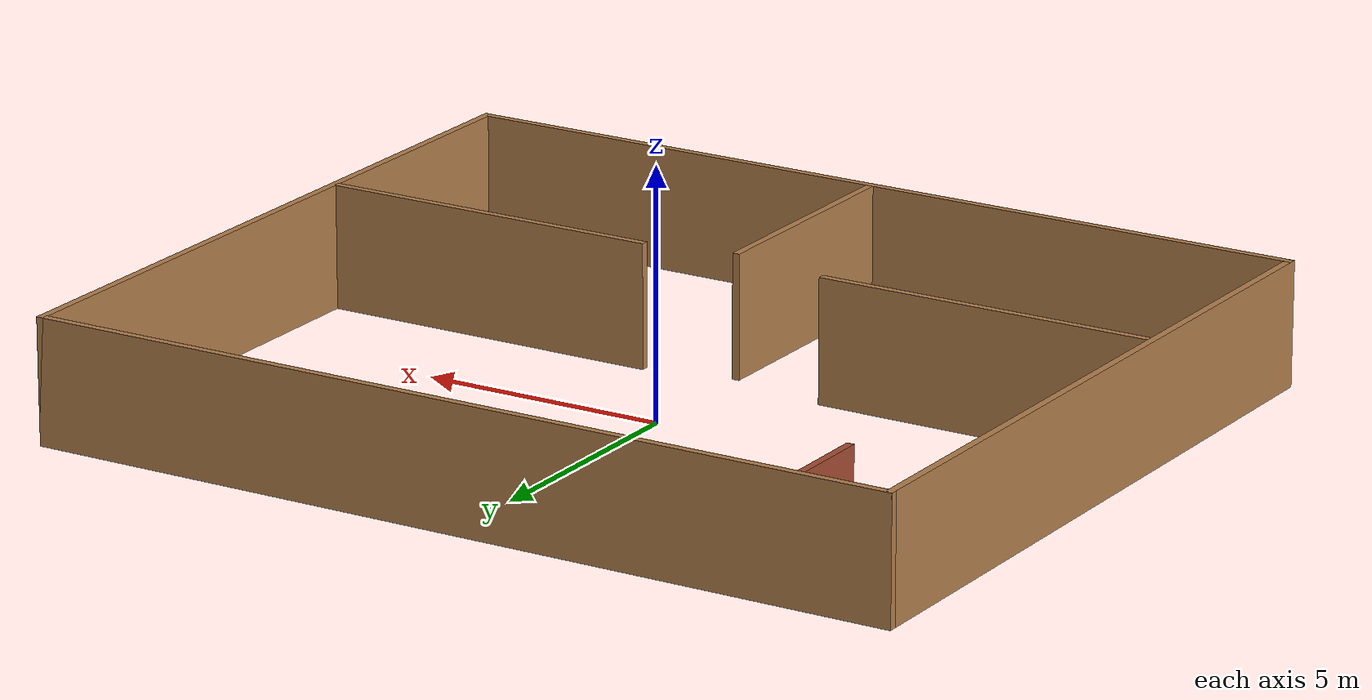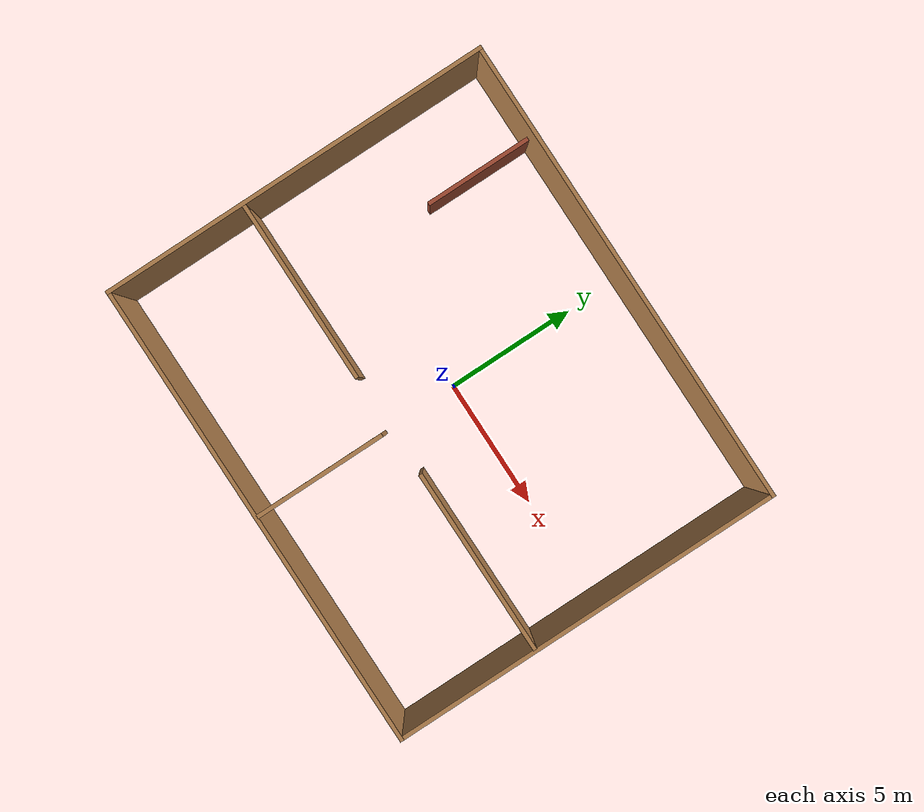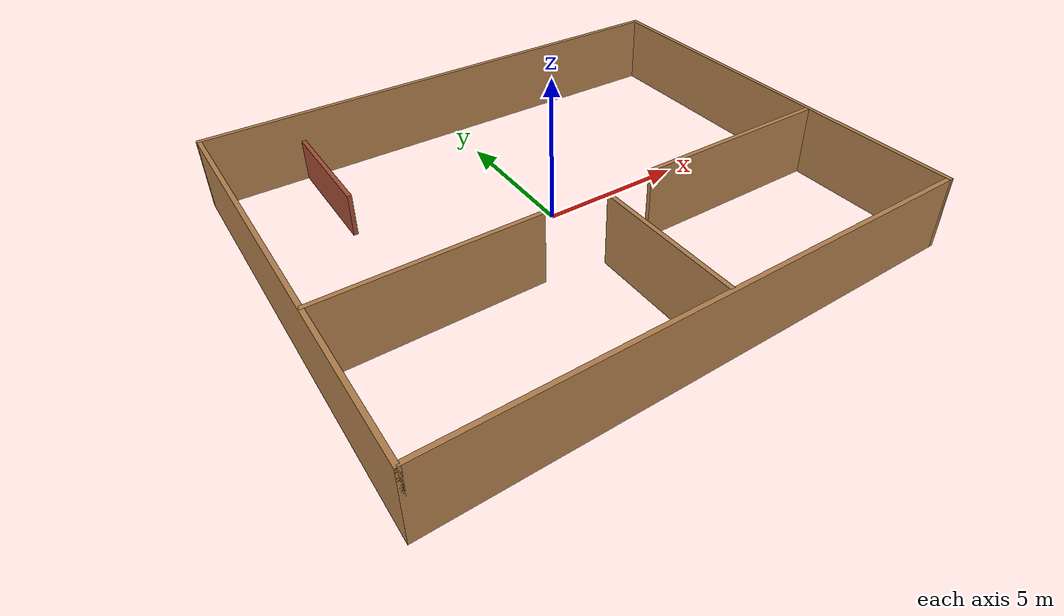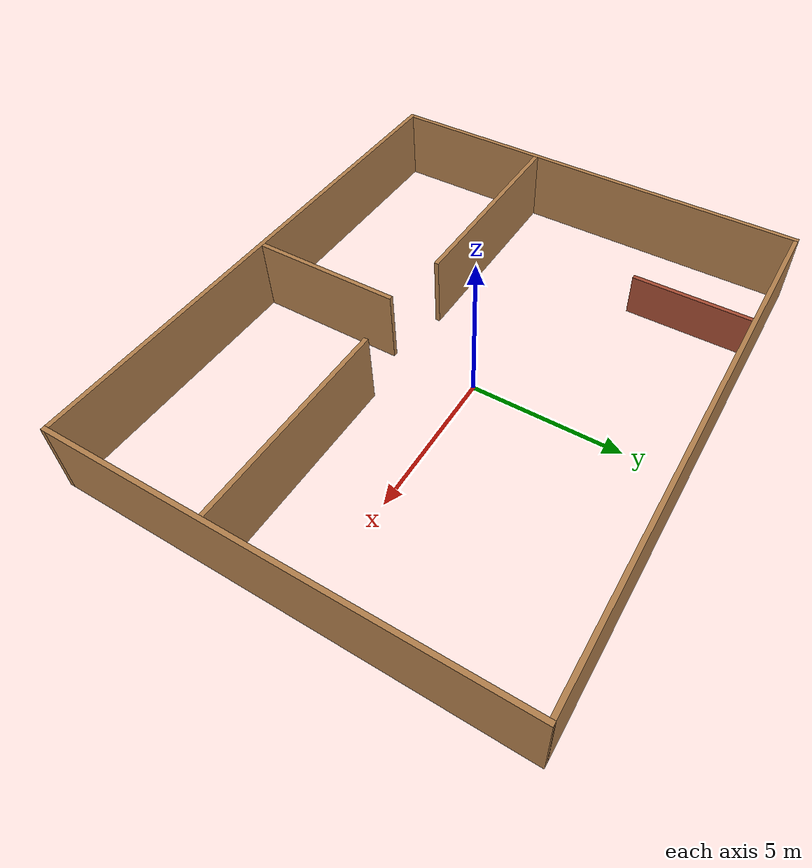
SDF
<?xml version='1.0'?>
<sdf version='1.7'>
  <model name='Untitled'>
    <pose>-0.035 -0.521 0 0 -0 0</pose>
    <link name='Wall_0'>
      <collision name='Wall_0_Collision'>
        <geometry>
          <box>
            <size>15 0.15 2.5</size>
          </box>
        </geometry>
        <pose>0 0 1.25 0 -0 0</pose>
      </collision>
      <visual name='Wall_0_Visual'>
        <pose>0 0 1.25 0 -0 0</pose>
        <geometry>
          <box>
            <size>15 0.15 2.5</size>
          </box>
        </geometry>
        <material>
          <script>
            <uri>file://media/materials/scripts/gazebo.material</uri>
            <name>Gazebo/Wood</name>
          </script>
          <ambient>1 1 1 1</ambient>
        </material>
        <meta>
          <layer>0</layer>
        </meta>
      </visual>
      <pose>-8.925 -0 0 0 -0 -1.5708</pose>
    </link>
    <link name='Wall_16'>
      <collision name='Wall_16_Collision'>
        <geometry>
          <box>
            <size>5 0.15 2.5</size>
          </box>
        </geometry>
        <pose>0 0 1.25 0 -0 0</pose>
      </collision>
      <visual name='Wall_16_Visual'>
        <pose>0 0 1.25 0 -0 0</pose>
        <geometry>
          <box>
            <size>5 0.15 2.5</size>
          </box>
        </geometry>
        <material>
          <script>
            <uri>file://media/materials/scripts/gazebo.material</uri>
            <name>Gazebo/Wood</name>
          </script>
          <ambient>1 1 1 1</ambient>
        </material>
        <meta>
          <layer>0</layer>
        </meta>
      </visual>
      <pose>0.084031 -4.88087 0 0 -0 -1.5708</pose>
    </link>
    <link name='Wall_2'>
      <collision name='Wall_2_Collision'>
        <geometry>
          <box>
            <size>18 0.15 2.5</size>
          </box>
        </geometry>
        <pose>0 0 1.25 0 -0 0</pose>
      </collision>
      <visual name='Wall_2_Visual'>
        <pose>0 0 1.25 0 -0 0</pose>
        <geometry>
          <box>
            <size>18 0.15 2.5</size>
          </box>
        </geometry>
        <material>
          <script>
            <uri>file://media/materials/scripts/gazebo.material</uri>
            <name>Gazebo/Wood</name>
          </script>
          <ambient>1 1 1 1</ambient>
        </material>
        <meta>
          <layer>0</layer>
        </meta>
      </visual>
      <pose>-0 -7.425 0 0 -0 0</pose>
    </link>
    <link name='Wall_31'>
      <collision name='Wall_31_Collision'>
        <geometry>
          <box>
            <size>7 0.15 2.5</size>
          </box>
        </geometry>
        <pose>0 0 1.25 0 -0 0</pose>
      </collision>
      <visual name='Wall_31_Visual'>
        <pose>0 0 1.25 0 -0 0</pose>
        <geometry>
          <box>
            <size>7 0.15 2.5</size>
          </box>
        </geometry>
        <material>
          <script>
            <uri>file://media/materials/scripts/gazebo.material</uri>
            <name>Gazebo/Wood</name>
          </script>
          <ambient>1 1 1 1</ambient>
        </material>
        <meta>
          <layer>0</layer>
        </meta>
      </visual>
      <pose>-5.464 -2.044 0 0 -0 0</pose>
    </link>
    <link name='Wall_35'>
      <collision name='Wall_35_Collision'>
        <geometry>
          <box>
            <size>7 0.15 2.5</size>
          </box>
        </geometry>
        <pose>0 0 1.25 0 -0 0</pose>
      </collision>
      <visual name='Wall_35_Visual'>
        <pose>0 0 1.25 0 -0 0</pose>
        <geometry>
          <box>
            <size>7 0.15 2.5</size>
          </box>
        </geometry>
        <material>
          <script>
            <uri>file://media/materials/scripts/gazebo.material</uri>
            <name>Gazebo/Wood</name>
          </script>
          <ambient>1 1 1 1</ambient>
        </material>
        <meta>
          <layer>0</layer>
        </meta>
      </visual>
      <pose>5.386 -2.044 0 0 -0 3.14159</pose>
    </link>
    <link name='Wall_4'>
      <collision name='Wall_4_Collision'>
        <geometry>
          <box>
            <size>18 0.15 2.5</size>
          </box>
        </geometry>
        <pose>0 0 1.25 0 -0 0</pose>
      </collision>
      <visual name='Wall_4_Visual'>
        <pose>0 0 1.25 0 -0 0</pose>
        <geometry>
          <box>
            <size>18 0.15 2.5</size>
          </box>
        </geometry>
        <material>
          <script>
            <uri>file://media/materials/scripts/gazebo.material</uri>
            <name>Gazebo/Wood</name>
          </script>
          <ambient>1 1 1 1</ambient>
        </material>
        <meta>
          <layer>0</layer>
        </meta>
      </visual>
      <pose>-0 7.425 0 0 -0 0</pose>
    </link>
    <link name='Wall_6'>
      <collision name='Wall_6_Collision'>
        <geometry>
          <box>
            <size>15 0.15 2.5</size>
          </box>
        </geometry>
        <pose>0 0 1.25 0 -0 0</pose>
      </collision>
      <visual name='Wall_6_Visual'>
        <pose>0 0 1.25 0 -0 0</pose>
        <geometry>
          <box>
            <size>15 0.15 2.5</size>
          </box>
        </geometry>
        <material>
          <script>
            <uri>file://media/materials/scripts/gazebo.material</uri>
            <name>Gazebo/Wood</name>
          </script>
          <ambient>1 1 1 1</ambient>
        </material>
        <meta>
          <layer>0</layer>
        </meta>
      </visual>
      <pose>8.925 -0 0 0 -0 -1.5708</pose>
    </link>
    <link name='Wall_9'>
      <collision name='Wall_9_Collision'>
        <geometry>
          <box>
            <size>4.25 0.15 1.5</size>
          </box>
        </geometry>
        <pose>0 0 0.75 0 -0 0</pose>
      </collision>
      <visual name='Wall_9_Visual'>
        <pose>0 0 0.75 0 -0 0</pose>
        <geometry>
          <box>
            <size>4.25 0.15 1.5</size>
          </box>
        </geometry>
        <material>
          <script>
            <uri>file://media/materials/scripts/gazebo.material</uri>
            <name>Gazebo/Bricks</name>
          </script>
          <ambient>1 1 1 1</ambient>
        </material>
        <meta>
          <layer>0</layer>
        </meta>
      </visual>
      <pose>-5.701 5.365 0 0 -0 -1.5708</pose>
    </link>
    <static>1</static>
  </model>
</sdf>
